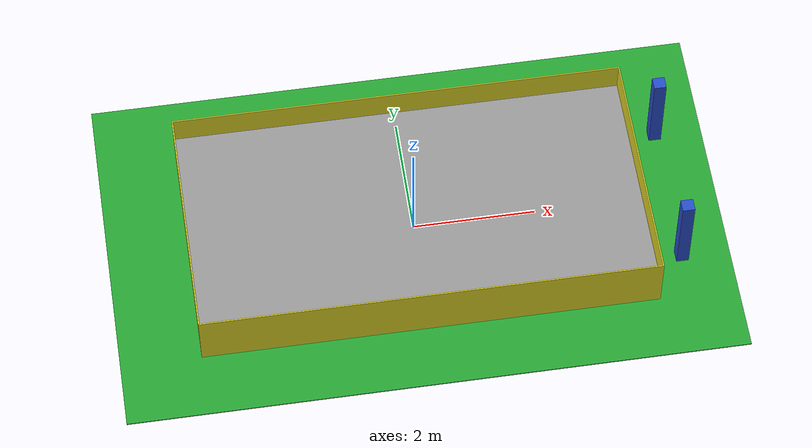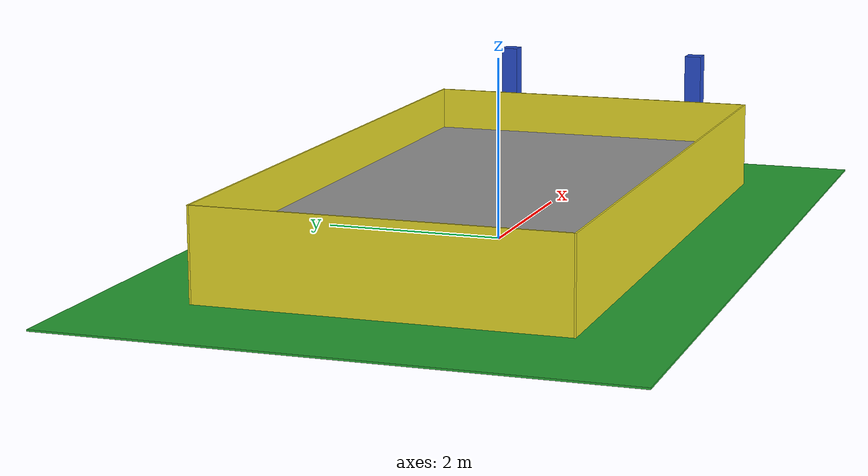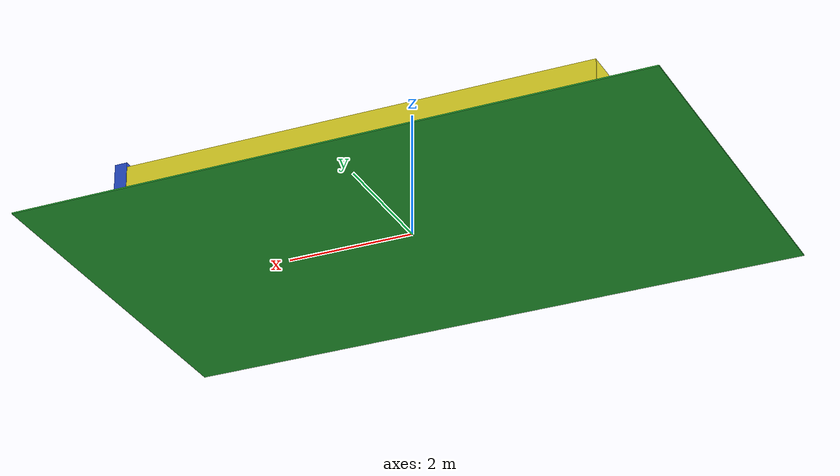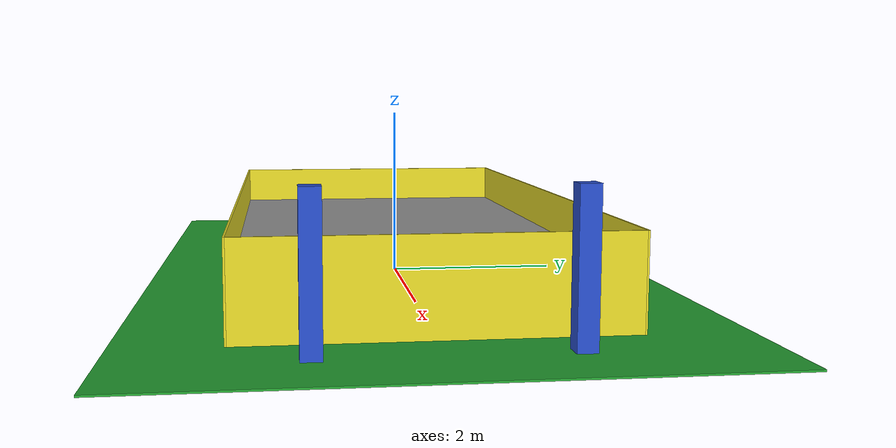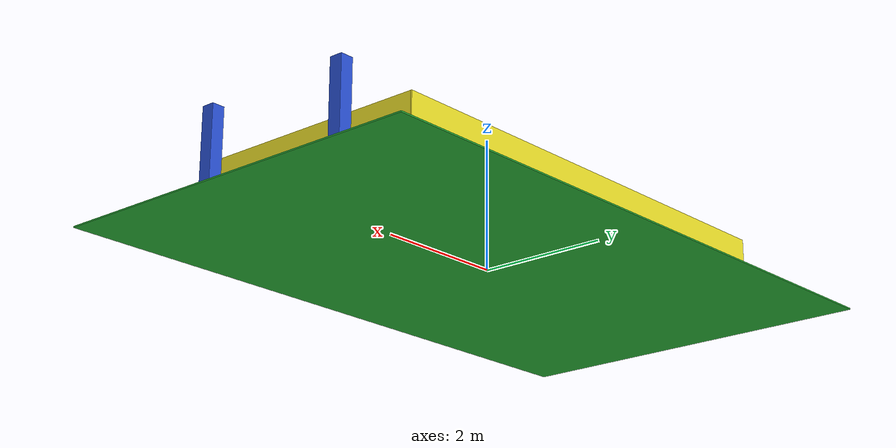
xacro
<robot name="sandbox">

<link name="ground" is_static="true">
    <inertial>
      <origin xyz="0 0 0" />
      <mass value="1000.0" />
      <inertia  ixx="1.0" ixy="0.0"  ixz="0.0"  iyy="100.0"  iyz="0.0"  izz="1.0" />
    </inertial>
    <visual>
      <origin xyz="0 0 0.0"/>
      <geometry>
        <box size="10 6 0.02" />
      </geometry>
    </visual>
    <collision>
      <origin xyz="0 0 0"/>
      <geometry>
        <box size="10 6 0.02" />
      </geometry>
    </collision>
  </link>
  <gazebo reference="ground">
    <material>Gazebo/Green</material>
  </gazebo>

<link name="bin_wall">
    <inertial>
      <origin xyz="0 0 0" />
      <mass value="1000.0" />
      <inertia  ixx="1.0" ixy="0.0"  ixz="0.0"  iyy="100.0"  iyz="0.0"  izz="1.0" />
    </inertial>
    <visual>
      <origin xyz="0 0 0"/>
      <geometry>
        <box size="0.02 3.88 1" />
      </geometry>
    </visual>
    <collision>
      <origin xyz="0 0 0"/>
      <geometry>
        <box size="0.02 3.88 1" />
      </geometry>
    </collision>
  </link>
  <gazebo reference="bin_wall">
    <material>Gazebo/Yellow</material>
  </gazebo>

<joint name="ground0" type="fixed">
    <parent link="ground" />
    <child link="bin_wall" />
    <origin xyz="3.71 0.0 0.5" rpy="0.0 0.0 0.0" />
  </joint>

<link name="left_wall">
    <inertial>
      <origin xyz="0 0 0" />
      <mass value="1000.0" />
      <inertia  ixx="1.0" ixy="0.0"  ixz="0.0"  iyy="100.0"  iyz="0.0"  izz="1.0" />
    </inertial>
    <visual>
      <origin xyz="-3.71 0.01 0"/>
      <geometry>
        <box size="7.42 0.02 1" />
      </geometry>
    </visual>
    <collision>
      <origin xyz="0 0 0"/>
      <geometry>
        <box size="7.42 0.02 1" />
      </geometry>
    </collision>
  </link>
  <gazebo reference="left_wall">
    <material>Gazebo/Yellow</material>
  </gazebo>

  <joint name="wall1" type="fixed">
    <parent link="bin_wall" />
    <child link="left_wall" />
    <origin xyz="0.01 1.94 0.0" rpy="0.0 0.0 0.0" />
  </joint>

<link name="opp_wall">
    <inertial>
      <origin xyz="0 0 0" />
      <mass value="1000.0" />
      <inertia  ixx="1.0" ixy="0.0"  ixz="0.0"  iyy="100.0"  iyz="0.0"  izz="1.0" />
    </inertial>
    <visual>
      <origin xyz="0.01 -1.94 0.0"/>
      <geometry>
        <box size="0.02 3.88 1" />
      </geometry>
    </visual>
    <collision>
      <origin xyz="0 0 0"/>
      <geometry>
        <box size="0.02 3.88 1" />
      </geometry>
    </collision>
  </link>
  <gazebo reference="opp_wall">
    <material>Gazebo/Yellow</material>
  </gazebo>

  <joint name="wall2" type="fixed">
    <parent link="left_wall" />
    <child link="opp_wall" />
    <origin xyz="-7.42 0.0 0.0" rpy="0.0 0.0 0.0" />
  </joint>

<link name="right_wall">
    <inertial>
      <origin xyz="0 0 0" />
      <mass value="1000.0" />
      <inertia  ixx="1.0" ixy="0.0"  ixz="0.0"  iyy="100.0"  iyz="0.0"  izz="1.0" />
    </inertial>
    <visual>
      <origin xyz="3.71 -0.01 0"/>
      <geometry>
        <box size="7.42 0.02 1" />
      </geometry>
    </visual>
    <collision>
      <origin xyz="0 0 0"/>
      <geometry>
        <box size="7.42 0.02 1" />
      </geometry>
    </collision>
  </link>
  <gazebo reference="right_wall">
    <material>Gazebo/Yellow</material>
  </gazebo>

  <joint name="wall3" type="fixed">
    <parent link="opp_wall" />
    <child link="right_wall" />
    <origin xyz="0.0 -3.88 0.0" rpy="0.0 0.0 0.0" />
  </joint>

<link name="floor">
    <inertial>
      <origin xyz="0 0 0" />
      <mass value="1000.0" />
      <inertia  ixx="1.0" ixy="0.0"  ixz="0.0"  iyy="100.0"  iyz="0.0"  izz="1.0" />
    </inertial>
    <visual>
      <origin xyz="3.69 1.94 0"/>
      <geometry>
        <box size="7.38 3.88 0.02" />
      </geometry>
    </visual>
    <collision>
      <origin xyz="0 0 0"/>
      <geometry>
        <box size="7.38 3.88 0.02" />
      </geometry>
    </collision>
  </link>
  <gazebo reference="floor">
    <material>Gazebo/Grey</material>
  </gazebo>

<joint name="wall4" type="fixed">
    <parent link="right_wall" />
    <child link="floor" />
    <origin xyz="0.02 0.0 0.0" rpy="0.0 0.0 0.0" />
  </joint>

<link name="leg1">
    <inertial>
      <origin xyz="0 0 0" />
      <mass value="1000.0" />
      <inertia  ixx="0.0" ixy="0.0"  ixz="0.0"  iyy="0.0"  iyz="0.0"  izz="0.0" />
    </inertial>
    <visual>
      <origin xyz="0.0 0.0 0.0"/>
      <geometry>
        <box size="0.2 0.2 1.5" />
      </geometry>
    </visual>
    <collision>
      <origin xyz="0 0 0"/>
      <geometry>
        <box size="0.2 0.2 1.5" />
      </geometry>
    </collision>
  </link>
  <gazebo reference="leg1">
    <material>Gazebo/Blue</material>
  </gazebo>

<joint name="groundleg1" type="fixed">
    <parent link="ground" />
    <child link="leg1" />
    <origin xyz="4.21 1.2 0.75" rpy="0.0 0.0 0.0" />
  </joint>

<link name="leg2">
    <inertial>
      <origin xyz="0 0 0" />
      <mass value="1000.0" />
      <inertia  ixx="1.0" ixy="0.0"  ixz="0.0"  iyy="100.0"  iyz="0.0"  izz="1.0" />
    </inertial>
    <visual>
      <origin xyz="0.0 0.0 0.0"/>
      <geometry>
        <box size="0.2 0.2 1.5" />
      </geometry>
    </visual>
    <collision>
      <origin xyz="0 0 0"/>
      <geometry>
        <box size="0.2 0.2 1.5" />
      </geometry>
    </collision>
  </link>
  <gazebo reference="leg2">
    <material>Gazebo/Blue</material>
  </gazebo>

<joint name="groundleg2" type="fixed">
    <parent link="ground" />
    <child link="leg2" />
    <origin xyz="4.21 -1.2 0.75" rpy="0.0 0.0 0.0" />
  </joint>

</robot>
